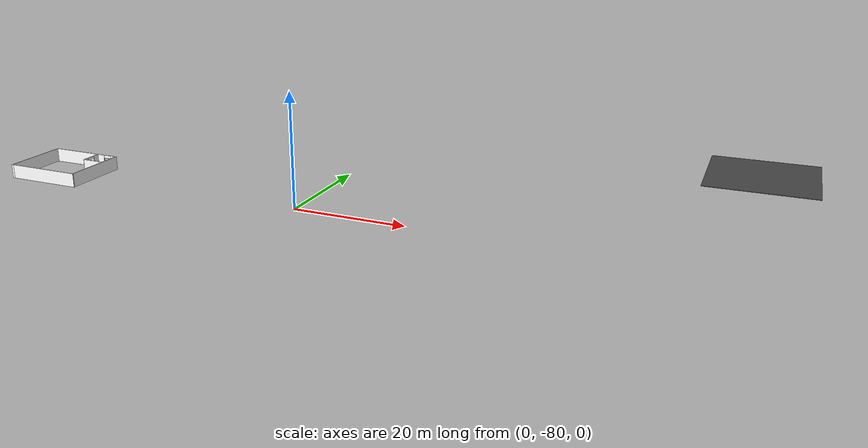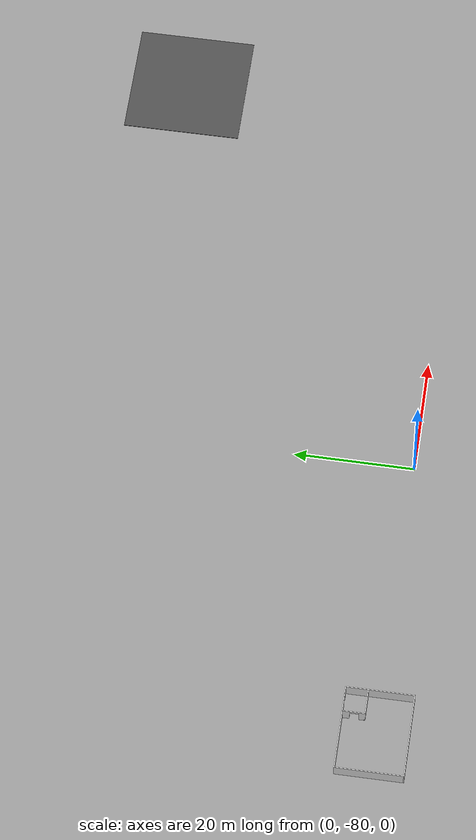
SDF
<sdf version="1.6">
 <world name="default">
  <model name="office3">
   <pose>-49.0179 -79.6403 0 0 -0 0</pose>
   <link name="Wall_226">
    <collision name="Wall_226_Collision">
     <geometry><box><size>11.25 0.15 2.5</size></box></geometry>
     <pose>0 0 1.25 0 -0 0</pose>
    </collision>
    <visual name="Wall_226_Visual">
     <pose>0 0 1.25 0 -0 0</pose>
     <geometry><box><size>11.25 0.15 2.5</size></box></geometry>
     <material>
      <script>
       <uri>model://office_env/materials/scripts</uri>
       <uri>model://office_env/materials/textures</uri>
       <name>wall</name>
      </script>
      <ambient>1 1 1 1</ambient>
     </material>
    </visual>
    <pose>-7.05 0 0 0 -0 1.5708</pose>
   </link>
   <link name="Wall_228">
    <pose>0 5.55 0 0 -0 0</pose>
    <visual name="Wall_228_Visual_0">
     <pose>-1.41788 0 1.25 0 -0 0</pose>
     <geometry><box><size>11.4142 0.15 2.5</size></box></geometry>
     <material>
      <script>
       <uri>model://office_env/materials/scripts</uri>
       <uri>model://office_env/materials/textures</uri>
       <name>wall</name>
      </script>
      <ambient>1 1 1 1</ambient>
     </material>
    </visual>
    <collision name="Wall_228_Collision_0">
     <geometry><box><size>11.4142 0.15 2.5</size></box></geometry>
     <pose>-1.41788 0 1.25 0 -0 0</pose>
    </collision>
    <visual name="Wall_228_Visual_1">
     <pose>6.45712 0 1.25 0 -0 0</pose>
     <geometry><box><size>1.33575 0.15 2.5</size></box></geometry>
     <material>
      <script>
       <uri>model://office_env/materials/scripts</uri>
       <uri>model://office_env/materials/textures</uri>
       <name>wall</name>
      </script>
      <ambient>1 1 1 1</ambient>
     </material>
    </visual>
    <collision name="Wall_228_Collision_1">
     <geometry><box><size>1.33575 0.15 2.5</size></box></geometry>
     <pose>6.45712 0 1.25 0 -0 0</pose>
    </collision>
    <visual name="Wall_228_Visual_2">
     <pose>5.03925 0 2.25 0 -0 0</pose>
     <geometry><box><size>1.5 0.15 0.5</size></box></geometry>
     <material>
      <script>
       <uri>model://office_env/materials/scripts</uri>
       <uri>model://office_env/materials/textures</uri>
       <name>wall</name>
      </script>
      <ambient>1 1 1 1</ambient>
     </material>
    </visual>
    <collision name="Wall_228_Collision_2">
     <geometry><box><size>1.5 0.15 0.5</size></box></geometry>
     <pose>5.03925 0 2.25 0 -0 0</pose>
    </collision>
   </link>
   <link name="Wall_229">
    <collision name="Wall_229_Collision">
     <geometry><box><size>11.25 0.15 2.5</size></box></geometry>
     <pose>0 0 1.25 0 -0 0</pose>
    </collision>
    <visual name="Wall_229_Visual">
     <pose>0 0 1.25 0 -0 0</pose>
     <geometry><box><size>11.25 0.15 2.5</size></box></geometry>
     <material>
      <script>
       <uri>model://office_env/materials/scripts</uri>
       <uri>model://office_env/materials/textures</uri>
       <name>wall</name>
      </script>
      <ambient>1 1 1 1</ambient>
     </material>
    </visual>
    <pose>7.05 0 0 0 0 -1.5708</pose>
   </link>
   <link name="Wall_230">
    <collision name="Wall_230_Collision">
     <geometry><box><size>14 0.15 2.5</size></box></geometry>
     <pose>0 0 1.25 0 -0 0</pose>
    </collision>
    <visual name="Wall_230_Visual">
     <pose>0 0 1.25 0 -0 0</pose>
     <geometry><box><size>14 0.15 2.5</size></box></geometry>
     <material>
      <script>
       <uri>model://office_env/materials/scripts</uri>
       <uri>model://office_env/materials/textures</uri>
       <name>wall</name>
      </script>
      <ambient>1 1 1 1</ambient>
     </material>
    </visual>
    <pose>0.125 -5.55 0 0 -0 3.14159</pose>
   </link>
   <link name="Wall_231">
    <collision name="Wall_231_Collision">
     <geometry><box><size>0.4 0.15 2.5</size></box></geometry>
     <pose>0 0 1.25 0 -0 0</pose>
    </collision>
    <visual name="Wall_231_Visual">
     <pose>0 0 1.25 0 -0 0</pose>
     <geometry><box><size>0.4 0.15 2.5</size></box></geometry>
     <material>
      <script>
       <uri>model://office_env/materials/scripts</uri>
       <uri>model://office_env/materials/textures</uri>
       <name>wall</name>
      </script>
      <ambient>1 1 1 1</ambient>
     </material>
    </visual>
    <pose>-6.925 -5.55 0 0 -0 3.14159</pose>
   </link>
   <link name="Wall_235">
    <pose>2.82004 3.69571 0 0 0 -1.5708</pose>
    <visual name="Wall_235_Visual_0">
     <pose>-1.26863 0 1.25 0 -0 0</pose>
     <geometry><box><size>1.21274 0.15 2.5</size></box></geometry>
     <material>
      <script>
       <uri>model://office_env/materials/scripts</uri>
       <uri>model://office_env/materials/textures</uri>
       <name>wall</name>
      </script>
      <ambient>1 1 1 1</ambient>
     </material>
    </visual>
    <collision name="Wall_235_Collision_0">
     <geometry><box><size>1.21274 0.15 2.5</size></box></geometry>
     <pose>-1.26863 0 1.25 0 -0 0</pose>
    </collision>
    <visual name="Wall_235_Visual_1">
     <pose>1.35637 0 1.25 0 -0 0</pose>
     <geometry><box><size>1.03726 0.15 2.5</size></box></geometry>
     <material>
      <script>
       <uri>model://office_env/materials/scripts</uri>
       <uri>model://office_env/materials/textures</uri>
       <name>wall</name>
      </script>
      <ambient>1 1 1 1</ambient>
     </material>
    </visual>
    <collision name="Wall_235_Collision_1">
     <geometry><box><size>1.03726 0.15 2.5</size></box></geometry>
     <pose>1.35637 0 1.25 0 -0 0</pose>
    </collision>
    <visual name="Wall_235_Visual_2">
     <pose>0.087742 0 2.25 0 -0 0</pose>
     <geometry><box><size>1.5 0.15 0.5</size></box></geometry>
     <material>
      <script>
       <uri>model://office_env/materials/scripts</uri>
       <uri>model://office_env/materials/textures</uri>
       <name>wall</name>
      </script>
      <ambient>1 1 1 1</ambient>
     </material>
    </visual>
    <collision name="Wall_235_Collision_2">
     <geometry><box><size>1.5 0.15 0.5</size></box></geometry>
     <pose>0.087742 0 2.25 0 -0 0</pose>
    </collision>
   </link>
   <link name="Wall_236">
    <collision name="Wall_236_Collision">
     <geometry><box><size>4.25 0.15 2.5</size></box></geometry>
     <pose>0 0 1.25 0 -0 0</pose>
    </collision>
    <visual name="Wall_236_Visual">
     <pose>0 0 1.25 0 -0 0</pose>
     <geometry><box><size>4.25 0.15 2.5</size></box></geometry>
     <material>
      <script>
       <uri>model://office_env/materials/scripts</uri>
       <uri>model://office_env/materials/textures</uri>
       <name>wall</name>
      </script>
      <ambient>1 1 1 1</ambient>
     </material>
    </visual>
    <pose>4.87004 1.89571 0 0 -0 0</pose>
   </link>
   <static>1</static>
  </model>
  <model name="asphalt_plane">
   <static>1</static>
   <link name="link">
    <collision name="collision"><geometry><box><size>20 20 0.1</size></box></geometry></collision>
    <visual name="visual">
     <cast_shadows>0</cast_shadows>
     <geometry><box><size>20 20 0.1</size></box></geometry>
     <material>
      <script>
       <uri>model://asphalt_plane/materials/scripts</uri>
       <uri>model://asphalt_plane/materials/textures</uri>
       <name>vrc/asphalt</name>
      </script>
     </material>
    </visual>
   </link>
   <pose>70.7475 -31.5972 0 0 -0 0</pose>
  </model>
 </world>
</sdf>
